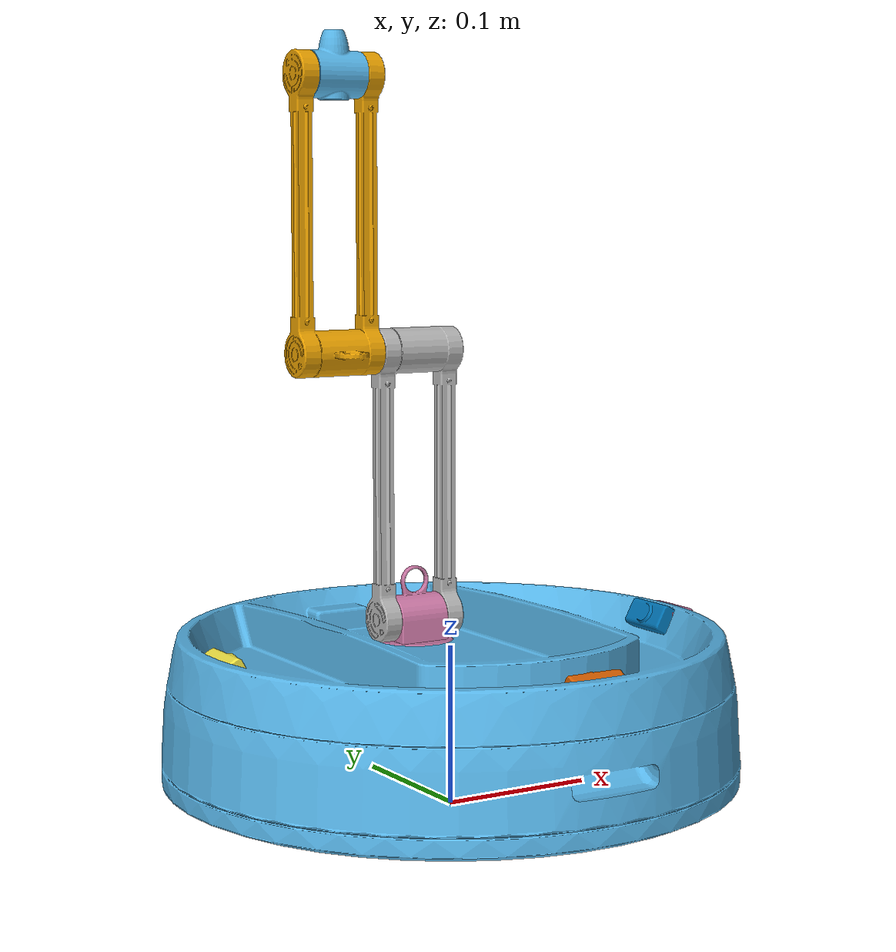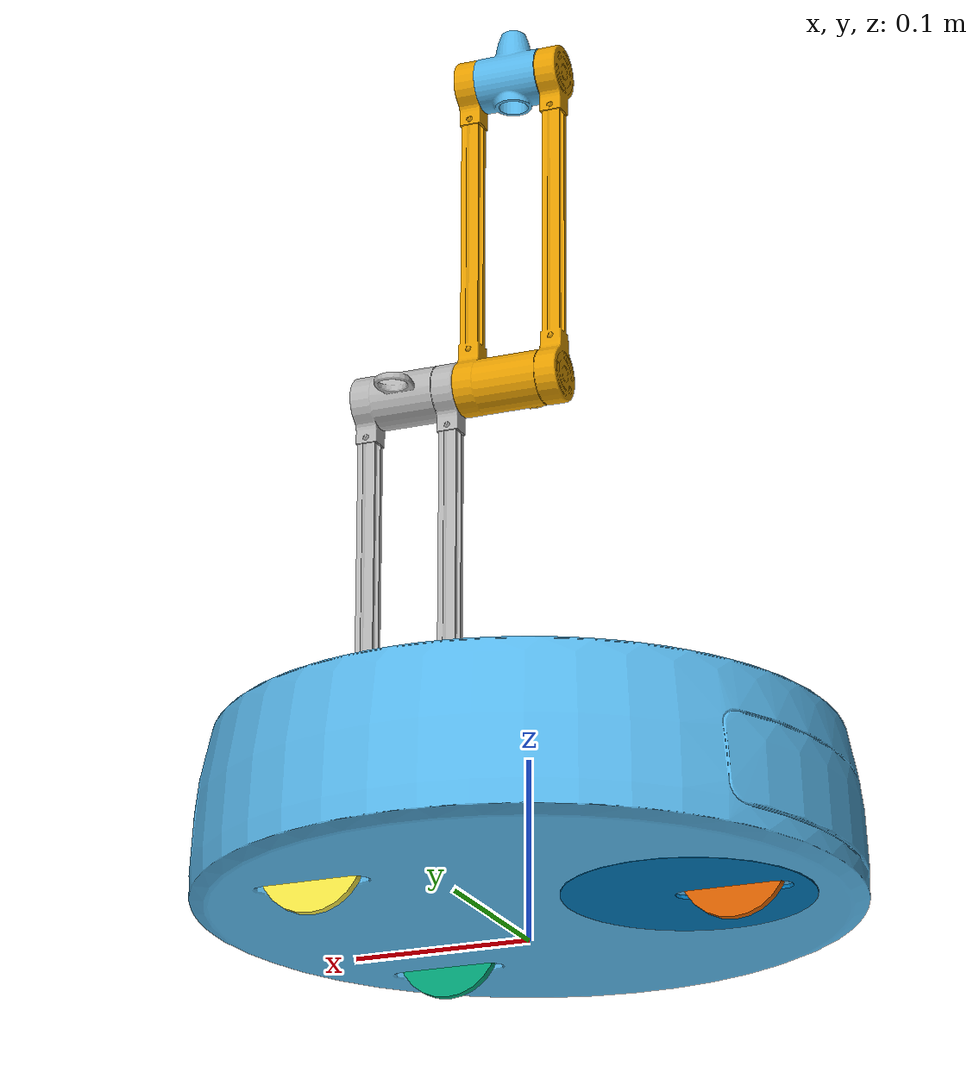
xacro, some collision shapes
<?xml version="1.0" encoding="utf-8" ?>
<robot xmlns:xacro="http://www.ros.org/wiki/xacro" name="vacuum_bot">

  <!-- include constants, configs, meshes etc -->

  <xacro:include filename="$(find vacuum_bot)/urdf/vacuum_bot_properties.xacro"/>

  <xacro:include filename="$(find vacuum_bot)/urdf/vacuum_bot_macros.xacro"/>

  <!-- Robot creation macro -->

  <xacro:macro name="vacuum_bot">

    <link name="base_footprint"/>

    <joint name="foot_base_joint" type="fixed">
      <origin xyz="0 0 0.015" rpy="0 0 0"/>
      <parent link="base_footprint"/>
      <child link="base_link"/>
    </joint>

    <link name="base_link">
      <visual>
	      <origin xyz="0 0 0" rpy="0 0 0"/>
        <geometry>
          <mesh filename="${base_mesh}"/>
        </geometry>
      </visual>

      <collision>
        <geometry>
	  <mesh filename="${base_collision}"/>
        </geometry>
	<origin xyz="0 0 0"/>
      </collision>
      <xacro:collision_cylinder radius="0.18" length="0.07" xyz="0 0 0.035"/>

      <inertial>
        <mass value="27.84" />
        <inertia ixx="0.37267" ixy="0.535" ixz="0.27612" iyy="0.60173" iyz="0.37267" izz="0.5256" />
      </inertial>
    </link>

    <xacro:wheel name="rwheel" parent="base_footprint" joint_xyz="0.085 -0.09 0.03" joint_rpy="${PI/2} 0 0"/>

    <xacro:wheel name="lwheel" parent="base_footprint" joint_xyz="0.085 0.09 0.03" joint_rpy="${PI/2} 0 0"/>

    <link name="wheelturn_link">
      <visual>
	<origin xyz="0 0 0" rpy="0 0 0"/>
	<geometry>
	  <mesh filename="${wheelturn_mesh}"/>
	</geometry>
      </visual>

      <xacro:collision_cylinder radius="0.0675" length="0.002"/>

      <inertial>
        <mass value="0.2102" />
        <inertia ixx="2.56e-7" ixy="4.979e-7" ixz="2.425e-7" iyy="2.425e-7" iyz="3.745e-7" izz="6.657e-7"/>
      </inertial>
    </link>

    <joint name="base_footprint_wheelturn_joint" type="continuous">
      <axis xyz="0 0 1" rpy="0 0 ${PI}"/>
      <origin xyz="-0.09 0 0.015"/>
      <parent link="base_footprint"/>
      <child link="wheelturn_link"/>
    </joint>

    <xacro:wheel name="freewheel" parent="wheelturn_link" joint_xyz="-0.025 0 0.015" joint_rpy="${PI/2} 0 0"/>

    <link name="z_link">
      <visual>
	<origin xyz="0 0 0" rpy="0 0 ${PI/2}"/>
	<geometry>
	  <mesh filename="${z_mesh}"/>
	</geometry>
      </visual>

      <xacro:collision_cylinder radius="0.01" length="0.115"/>
      <xacro:collision_cylinder radius="0.025" length="0.085"/>

      <inertial>
        <mass value="0.092245" />
        <inertia ixx="5.697e-8" ixy="3.451e-8" ixz="5.343e-8" iyy="5.343e-8" iyz="3.451e-8" izz="3.451e-8" />
      </inertial>
    </link>

    <joint name="base_z_joint" type="revolute">
      <axis xyz="0 0 1" rpy="0 0 0"/>
      <origin xyz="0.0295 0.095 0.06" rpy="0 0 ${PI/2}"/>
      <parent link="base_link"/>
      <child link="z_link"/>
      <limit effort="${base_z_effort}" velocity="${base_z_vel}" lower="${base_z_lower}" upper="${base_z_upper}"/>
      <dynamics damping="0.7" friction="1.0"/>
  </joint>

    <link name="lower_arm">
      <visual>
        <origin xyz="0 0 0" rpy="0 0 0"/>
        <geometry>
          <mesh filename="${lower_mesh}"/>
        </geometry>
      </visual>

      <xacro:collision_box size="0.168 0.01 0.01" xyz="0.09 0 0.0235"/>
      <xacro:collision_box size="0.168 0.01 0.01" xyz="0.09 0 -0.0235"/>
      <xacro:collision_box size="0.005 0.02 0.02" xyz="0.178 -0.025 0"/>
      <xacro:collision_cylinder radius="0.014" length="0.058" xyz="0 0 0" rpy="0 0 ${PI/2}"/>
      <xacro:collision_cylinder radius="0.015" length="0.058" xyz="0.178 0 0" rpy="0 0 ${PI/2}"/>

      <inertial>
        <mass value="0.027199" />
        <inertia ixx="0.01" ixy="0" ixz="0" iyy="0.01" iyz="0" izz="0.01" />
      </inertial>
    </link>

    <joint name="z_lower_joint" type="revolute">
      <axis xyz="0 0 1" rpy="0 0 0"/>
      <origin xyz="0 0 0.025" rpy="${PI/2} -${PI/2} 0"/>
      <parent link="z_link"/>
      <child link="lower_arm"/>
      <limit effort="${z_lower_effort}" velocity="${z_lower_vel}" lower="${z_lower_lower}" upper="${z_lower_upper}"/>
      <dynamics damping="0.7" friction="1.0"/>
    </joint>

    <link name="upper_arm">
      <visual>
        <origin xyz="0 0 0" rpy="0 0 0"/>
        <geometry>
          <mesh filename="${upper_mesh}"/>
        </geometry>
      </visual>

      <xacro:collision_box size="0.174 0.01 0.01" xyz="0.0775 0 0.0235"/>
      <xacro:collision_box size="0.174 0.01 0.01" xyz="0.0775 0 -0.0235"/>
      <xacro:collision_box size="0.005 0.02 0.02" xyz="0 0.025 0"/>
      <xacro:collision_cylinder radius="0.015" length="0.058" xyz="0 0 0" rpy="0 0 ${PI/2}"/>
      <xacro:collision_cylinder radius="0.015" length="0.011" xyz="0.178 0 0.0235" rpy="0 0 ${PI/2}"/>
      <xacro:collision_cylinder radius="0.015" length="0.011" xyz="0.178 0 -0.0235" rpy="0 0 ${PI/2}"/>

      <inertial>
        <mass value="0.05571" />
        <inertia ixx="0.01" ixy="0" ixz="2.975e-8" iyy="0.01" iyz="0" izz="0.01" />
      </inertial>
    </link>

    <joint name="lower_upper_joint" type="revolute">
      <axis xyz="0 0 1" rpy="0 0 0"/>
      <origin xyz="0.178 0 -0.059" rpy="0 0 0"/>
      <parent link="lower_arm"/>
      <child link="upper_arm"/>
      <limit effort="${lower_upper_effort}" velocity="${lower_upper_vel}" lower="${lower_upper_lower}" upper="${lower_upper_upper}"/>
      <dynamics damping="0.7" friction="1.0"/>
    </joint>

    <link name ="end_effector">
      <visual>
        <origin xyz="0 0 0" rpy="0 0 0"/>
        <geometry>
          <mesh filename="${end_mesh}"/>
        </geometry>
      </visual>

      <xacro:collision_cylinder radius="0.015" length="0.0355" xyz="0 0 0" rpy="0 0 0"/>
      <xacro:collision_cylinder radius="0.01" length="0.043" xyz="0.006 0 0" rpy="0 ${PI/2} 0"/>

      <inertial>
        <mass value="0.19306" />
        <inertia ixx="0.01" ixy="2.919e-8" ixz="9.708e-8" iyy="0.01" iyz="9.034e-8" izz="0.01" />
      </inertial>
    </link>

    <joint name="upper_end_joint" type="revolute">
      <axis xyz="0 0 1" rpy="0 0 0"/>
      <origin xyz="0.178 0 0" rpy="0 0 0"/>
      <parent link="upper_arm"/>
      <child link="end_effector"/>
      <limit effort="${upper_end_effort}" velocity="${upper_end_vel}" lower="${upper_end_lower}" upper="${upper_end_upper}"/>
      <dynamics damping="0.7" friction="1.0"/>
    </joint>

    <link name="virtual_end">
      <visual>
        <origin xyz="0 0 -0.028" rpy="0 0 0" />
        <geometry>
          <box size="0.001 0.001 0.001" />
        </geometry>
      </visual>

      <xacro:collision_box size="0.001 0.001 0.001" xyz="0 0 -0.028"/>

      <inertial>
        <mass value="0.001" />
        <inertia ixx="0.001" ixy="0" ixz="0" iyy="0.001" iyz="0" izz="0.001" />
      </inertial>
    </link>

    <joint name="end_virtual_joint" type="fixed">
      <axis xyz="0 0 1" rpy="0 0 0"/>
      <origin xyz="0.028 0.0 0" rpy="${PI/2} 0 ${PI/2}"/>
      <parent link="end_effector"/>
      <child link="virtual_end"/>
      <limit effort="1000" velocity="0"/>
    </joint>

    <!-- camera models -->
    <xacro:camera_model name="camera_back_model" xyz="-0.16 0 0.1" rpy="0 -0.5 0"/>

    <xacro:camera_model name="camera_front_model" xyz="0.16 0 0.1" rpy="0 -0.5 ${PI}"/>

    <xacro:camera_model name="camera_side_model" xyz="0 -0.16 0.1" rpy="0 -0.5 ${PI/2}"/>

    <xacro:camera_model name="camera_outwards_model" xyz="0.165 0 0.1" rpy="0 0 0"/>

    <!-- Cameras for scene capturing -->

    <xacro:camera_rec name="camera_end" xyz="0.017 0.015 -0.0175" rpy="-${PI/2} 0 -0.4" parent="end_effector"/>
    <xacro:camera_rec name="camera_front" xyz="0.11 0 0.12" rpy="0 0.2 0" parent="base_link"/>
    <xacro:camera_rec name="camera_bird" xyz="0.75 -0.375 0.375" rpy="0 0.3 2.86" parent="base_link"/>
    <!-- Gazebo plugin publishing the ground truth odometry -->

    <xacro:gazebo_p3d/>

    <!-- Transmissions and plugin for ros_control -->

    <xacro:transmission_block joint_name="base_z_joint" interface_type="PositionJointInterface"/>
    <xacro:transmission_block joint_name="z_lower_joint" interface_type="PositionJointInterface"/>
    <xacro:transmission_block joint_name="lower_upper_joint" interface_type="PositionJointInterface"/>
    <xacro:transmission_block joint_name="upper_end_joint" interface_type="PositionJointInterface"/>

    <xacro:ros_control_plugin ns="vacuum_bot"/>

  </xacro:macro>

  <xacro:vacuum_bot/>

</robot>

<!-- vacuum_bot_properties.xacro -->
<!-- useful properties and constants -->

<robot name="xacro_properties" xmlns:xacro="http://www.ros.org/wiki/xacro">
	<!-- math constants -->

	<xacro:property name="PI" value="3.14159265" />

	<!-- robot properties -->

	<xacro:property name="base_mesh" value="package://vacuum_bot/urdf/meshes/base_tex.dae"/>
	<xacro:property name="base_collision" value="package://vacuum_bot/urdf/meshes/base_collision.dae"/>

	<xacro:property name="wheel_mesh" value="package://vacuum_bot/urdf/meshes/wheel_tex.dae"/>

	<xacro:property name="wheelturn_mesh" value="package://vacuum_bot/urdf/meshes/wheel_plate.dae"/>

	<xacro:property name="z_mesh" value="package://vacuum_bot/urdf/meshes/z_link_tex.dae"/>

	<xacro:property name="base_z_effort" value="1000.0"/>
	<xacro:property name="base_z_vel" value="0.5"/>
	<xacro:property name="base_z_lower" value="-${PI}"/>
	<xacro:property name="base_z_upper" value="${PI}"/>

	<xacro:property name="lower_mesh" value="package://vacuum_bot/urdf/meshes/lower_arm_tex.dae"/>

	<xacro:property name="z_lower_effort" value="1000.0"/>
	<xacro:property name="z_lower_vel" value="0.5"/>
	<xacro:property name="z_lower_lower" value="-${PI}"/>
	<xacro:property name="z_lower_upper" value="${PI}"/>

	<xacro:property name="upper_mesh" value="package://vacuum_bot/urdf/meshes/upper_arm_tex.dae"/>

	<xacro:property name="lower_upper_effort" value="1000.0"/>
	<xacro:property name="lower_upper_vel" value="0.5"/>
	<xacro:property name="lower_upper_lower" value="-${PI}"/>
	<xacro:property name="lower_upper_upper" value="${PI}"/>

	<xacro:property name="end_mesh" value="package://vacuum_bot/urdf/meshes/end_effector_tex.dae"/>

	<xacro:property name="upper_end_effort" value="1000.0"/>
	<xacro:property name="upper_end_vel" value="1"/>
	<xacro:property name="upper_end_lower" value="-${PI}"/>
	<xacro:property name="upper_end_upper" value="${PI}"/>

	<xacro:property name="camera_mesh" value="package://vacuum_bot/urdf/meshes/camera.dae"/>
</robot>

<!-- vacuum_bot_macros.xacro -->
<robot name="vacuum_bot_macros" xmlns:xacro="http://www.ros.org/wiki/xacro">

	<xacro:include filename="$(find vacuum_bot)/urdf/vacuum_bot_properties.xacro"/>

	<!-- wheel macro -->
	<xacro:macro name="wheel" params="name xyz:='0 0 0' rpy:='0 0 0' mass:='0.0482' parent joint_xyz joint_rpy act_type:='fixed'">
		<link name="${name}">
			<visual>
				<origin xyz="${xyz}" rpy="${rpy}"/>
        			<geometry>
          				<mesh filename="${wheel_mesh}"/>
        			</geometry>
      			</visual>

      			<collision>
        			<geometry>
	       				<cylinder length="0.005" radius="0.03"/>
        			</geometry>
				<origin xyz="${xyz}" rpy="${rpy}"/>
      			</collision>

			<inertial>
				<mass value="${mass}" />
				<origin xyz="${xyz}" />
				<inertia ixx="3.745e-7" ixy="6.657e-7" ixz="3.28e-7" iyy="3.28e-7" iyz="3.745e-7" izz="6.657e-7"/>
			</inertial>
		</link>

		<joint name="${parent}_${name}_joint" type="${act_type}">
      			<axis xyz="0 0 1" rpy="0 0 0"/>
			<origin xyz="${joint_xyz}" rpy="${joint_rpy}"/>
			<parent link="${parent}"/>
			<child link="${name}"/>
    		</joint>
	</xacro:macro>

	<!-- macro for fast collision box primitive (lots of them in the model) -->

	<xacro:macro name="collision_box" params="size xyz:='0 0 0' rpy:='0 0 0'">
		<collision>
			<geometry>
				<box size="${size}"/>
			</geometry>
			<origin xyz="${xyz}"/>
		</collision>
	</xacro:macro>

	<!-- macro for fast collision cylinder primitive (lots of them in the model) -->

	<xacro:macro name="collision_cylinder" params="radius length xyz:='0 0 0' rpy:='0 0 0'">
		<collision>
			<geometry>
				<cylinder radius="${radius}" length="${length}"/>
			</geometry>
			<origin xyz="${xyz}" rpy="${rpy}"/>
		</collision>
	</xacro:macro>

	<!-- macro for the camera models -->
	<xacro:macro name="camera_model" params="name xyz rpy:='0 0 0'">
		<link name="${name}">
			<visual>
        			<origin xyz="0 0 0" rpy="0 0 0"/>
        			<geometry>
          				<mesh filename="${camera_mesh}"/>
        			</geometry>
      			</visual>
      			<collision>
        			<origin xyz="0 0 0" rpy="0 0 0"/>
        			<geometry>
          				<mesh filename="${camera_mesh}"/>
        			</geometry>
      			</collision>
      			<inertial>
        			<mass value="0.01"/>
        			<inertia ixx="0.01" ixy="0" ixz="0" iyy="0.01" iyz="0" izz="0"/>
      			</inertial>
    		</link>

		<joint name="${name}_joint" type="fixed">
			<axis xyz="1 0 0" rpy="0 0 0"/>
			<origin xyz="${xyz}" rpy="${rpy}"/>
			<child link="${name}"/>
      			<parent link="base_footprint"/>
		</joint>
	</xacro:macro>

	<!-- macro for the recording cameras -->
	<xacro:macro name="camera_rec" params="name xyz:='0 0 0' rpy:='0 0 0' parent">
		<link name="${name}_link"/>

		<joint name="${name}_joint" type="fixed">
        		<axis xyz="1 0 0" rpy="0 0 0"/>
			<origin xyz="${xyz}" rpy="${rpy}"/>
			<parent link="${parent}"/>
			<child link="${name}_link"/>
    		</joint>

		<gazebo reference="${name}_link">
			<sensor type="camera" name="${name}">
                		<update_rate>50</update_rate>
                		<camera name="head">
                        		<horizontal_fov>1.3962634</horizontal_fov>
                        		<image>
                                		<width>1920</width>
                                		<height>1080</height>
                                		<format>R8G8B8</format>
                        		</image>
                        		<clip>
                                		<near>0.01</near>
                                		<far>300</far>
                        		</clip>
                		</camera>
                		<plugin name="camera_controller" filename="libgazebo_ros_camera.so">
                        		<alwaysOn>true</alwaysOn>
                        		<updateRate>0.0</updateRate>
					<cameraName>vacuum_bot/${name}</cameraName>
                        		<imageTopicName>image_raw</imageTopicName>
                        		<cameraInfoTopicName>camera_info</cameraInfoTopicName>
                        		<frameName>camera_link</frameName>
                        		<hackBaseline>0.07</hackBaseline>
                        		<distortionK1>0.0</distortionK1>
                        		<distortionK2>0.0</distortionK2>
                        		<distortionK3>0.0</distortionK3>
                        		<distortionT1>0.0</distortionT1>
                        		<distortionT2>0.0</distortionT2>
                		</plugin>
         		</sensor>
    		</gazebo>
	</xacro:macro>

	<!-- Gazebo transmission_block macro -->

        <xacro:macro name="transmission_block" params="joint_name interface_type:='PositionJointInterface'">
		<transmission name="trans_${joint_name}">
                        <type>transmission_interface/SimpleTransmission</type>
                        <joint name="${joint_name}">
				<hardwareInterface>hardware_interface/${interface_type}</hardwareInterface>
                        </joint>
			<actuator name="${joint_name}_motor">
				<hardwareInterface>hardware_interface/${interface_type}</hardwareInterface>
                                <mechanicalReduction>1</mechanicalReduction>
                        </actuator>
                </transmission>
        </xacro:macro>

        <!-- Macro for initiallizing the ros_control plugin -->

        <xacro:macro name="ros_control_plugin" params="ns:=''">
                <gazebo>
                        <plugin name="gazebo_ros_control" filename="libgazebo_ros_control.so">
				<robotNamespace>${ns}</robotNamespace>
                        </plugin>
                </gazebo>
        </xacro:macro>

	<!-- macro for odometry publishing -->

	<xacro:macro name="gazebo_p3d" params="body_name:='base_footprint' odom_topic:='vacuum_bot/odom' update_rate:='500'">
		<gazebo>
  			<plugin name="ground_truth" filename="libgazebo_ros_p3d.so">
    				<frameName>map</frameName>
				<bodyName>${body_name}</bodyName>
				<topicName>${odom_topic}</topicName>
				<updateRate>${update_rate}</updateRate>
  			</plugin>
		</gazebo>
	</xacro:macro>

</robot>
